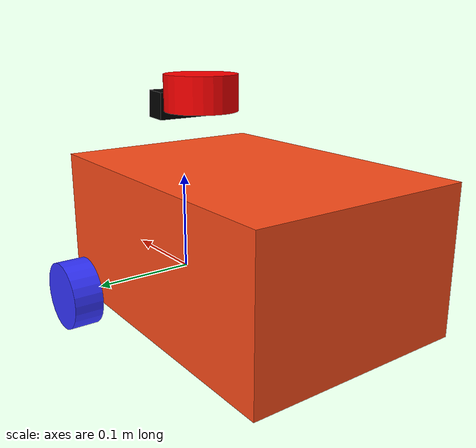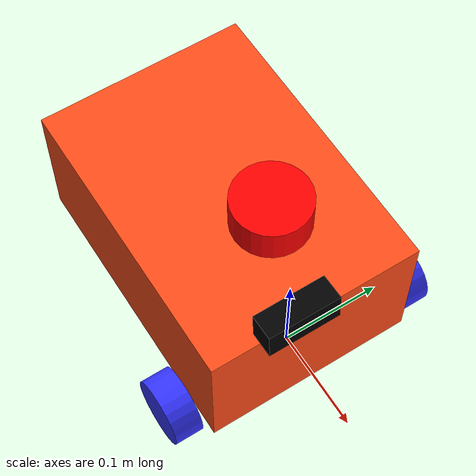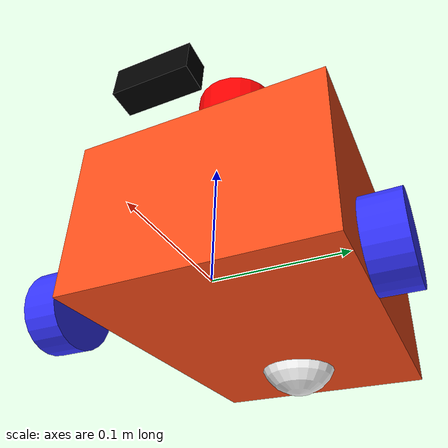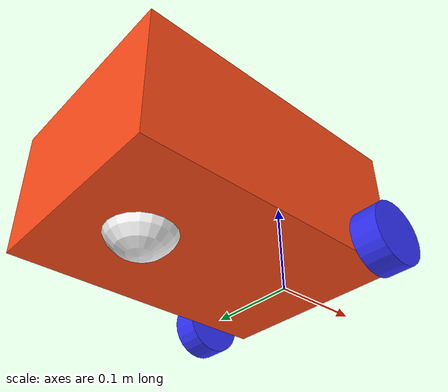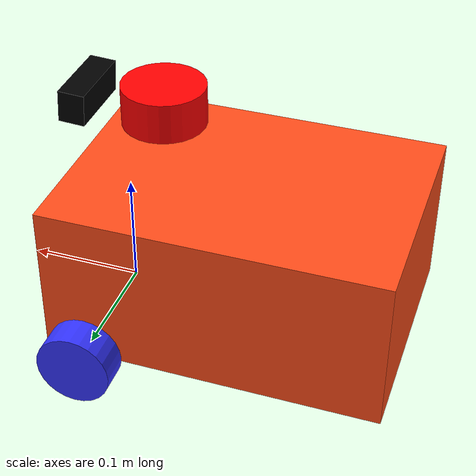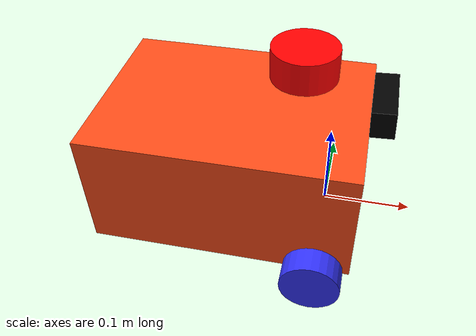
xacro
<?xml version="1.0"?>
<robot xmlns:xacro="http://www.ros.org/wiki/xacro"  name="robot">

    <xacro:arg name="use_ros2_control" default="true"/>
    <xacro:arg name="sim_mode" default="false"/>
    <xacro:arg name="use_imu" default="false"/>

    <xacro:include filename="robot_core.xacro" />
    <xacro:include filename="ros2_control.xacro" />
    <xacro:include filename="gazebo_control.xacro" />
    <xacro:include filename="lidar.xacro" />
    <xacro:include filename="camera.xacro" />
    <xacro:include filename="imu.xacro" />

</robot>

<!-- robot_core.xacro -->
<robot xmlns:xacro="http://www.ros.org/wiki/xacro" >

    <xacro:include filename="inertial_macros.xacro"/>

    <xacro:property name="chassis_length" value="0.295"/>
    <xacro:property name="chassis_width" value="0.21"/>
    <xacro:property name="chassis_height" value="0.138"/>
    <xacro:property name="chassis_mass" value="1.0"/>
    <xacro:property name="wheel_radius" value="0.0327"/>
    <xacro:property name="wheel_thickness" value="0.028"/>
    <xacro:property name="wheel_mass" value="0.05"/>
    <!-- MEASURED: axle to chassis REAR edge. chassis_length above is still an
         unverified 0.295, so the chassis FRONT edge (base_link x = +0.040) is
         derived, not measured. -->
    <xacro:property name="wheel_offset_x" value="0.255"/>
    <xacro:property name="wheel_offset_y" value="0.12584"/>
    <xacro:property name="wheel_offset_z" value="0.01"/>
    <xacro:property name="caster_wheel_radius" value="0.038"/>
    <xacro:property name="caster_wheel_mass" value="0.01"/>
    <xacro:property name="caster_wheel_offset_x" value="0.075"/>
    <xacro:property name="caster_wheel_offset_z" value="${wheel_offset_z - wheel_radius + caster_wheel_radius}"/>

    <material name="white">
        <color rgba="1 1 1 1" />
    </material>

    <material name="orange">
        <color rgba="1 0.3 0.1 1"/>
    </material>

    <material name="blue">
        <color rgba="0.2 0.2 1 1"/>
    </material>

    <material name="black">
        <color rgba="0 0 0 1"/>
    </material>

    <material name="red">
        <color rgba="1 0 0 1"/>
    </material>

    <!-- BASE LINK -->

    <link name="base_link">

    </link>

    <!-- BASE_FOOTPRINT LINK -->

    <joint name="base_footprint_joint" type="fixed">
        <parent link="base_link"/>
        <child link="base_footprint"/>
        <origin xyz="0 0 ${-wheel_radius}" rpy="0 0 0"/>
    </joint>

    <link name="base_footprint">
    </link>

    <!-- CHASSIS LINK -->

    <joint name="chassis_joint" type="fixed">
        <parent link="base_link"/>
        <child link="chassis"/>
        <origin xyz="${-wheel_offset_x} 0 ${-wheel_offset_z}"/>
    </joint>

    <link name="chassis">
        <visual>
            <origin xyz="${chassis_length/2} 0 ${chassis_height/2}"/>
            <geometry>
                <box size="${chassis_length} ${chassis_width} ${chassis_height}"/>
            </geometry>
            <material name="orange"/>
        </visual>
        <collision>
            <origin xyz="${chassis_length/2} 0 ${chassis_height/2}"/>
            <geometry>
                <box size="${chassis_length} ${chassis_width} ${chassis_height}"/>
            </geometry>
        </collision>
        <xacro:inertial_box mass="${chassis_mass}" x="${chassis_length}" y="${chassis_width}" z="${chassis_height}">
            <origin xyz="${chassis_length/2} 0 ${chassis_height/2}" rpy="0 0 0"/>
        </xacro:inertial_box>
    </link>

    <gazebo reference="chassis">
        <material>Gazebo/Orange</material>
    </gazebo>

    <!-- LEFT WHEEL LINK -->

    <joint name="left_wheel_joint" type="continuous">
        <parent link="base_link"/>
        <child link="left_wheel"/>
        <origin xyz="0 ${wheel_offset_y} 0" rpy="-${pi/2} 0 0" />
        <axis xyz="0 0 1"/>
    </joint>

    <link name="left_wheel">
        <visual>
            <geometry>
                <cylinder radius="${wheel_radius}" length="${wheel_thickness}"/>
            </geometry>
            <material name="blue"/>
        </visual>
        <collision>
            <geometry>
                <sphere radius="${wheel_radius}"/>
            </geometry>
        </collision>
        <xacro:inertial_cylinder mass="${wheel_mass}" length="${wheel_thickness}" radius="${wheel_radius}">
            <origin xyz="0 0 0" rpy="0 0 0"/>
        </xacro:inertial_cylinder>
    </link>

    <gazebo reference="left_wheel">
        <material>Gazebo/Blue</material>
    </gazebo>

    <!-- RIGHT WHEEL LINK -->

    <joint name="right_wheel_joint" type="continuous">
        <parent link="base_link"/>
        <child link="right_wheel"/>
        <origin xyz="0 ${-wheel_offset_y} 0" rpy="${pi/2} 0 0" />
        <axis xyz="0 0 -1"/>
    </joint>

    <link name="right_wheel">
        <visual>
            <geometry>
                <cylinder radius="${wheel_radius}" length="${wheel_thickness}"/>
            </geometry>
            <material name="blue"/>
        </visual>
        <collision>
            <geometry>
                <sphere radius="${wheel_radius}"/>
            </geometry>
        </collision>
        <xacro:inertial_cylinder mass="${wheel_mass}" length="${wheel_thickness}" radius="${wheel_radius}">
            <origin xyz="0 0 0" rpy="0 0 0"/>
        </xacro:inertial_cylinder>
    </link>

    <gazebo reference="right_wheel">
        <material>Gazebo/Blue</material>
    </gazebo>

    <!-- CASTER WHEEL LINK -->

    <joint name="caster_wheel_joint" type="fixed">
        <parent link="chassis"/>
        <child link="caster_wheel"/>
        <origin xyz="${caster_wheel_offset_x} 0 ${caster_wheel_offset_z}"/>
    </joint>

    <link name="caster_wheel">
        <visual>
            <geometry>
                <sphere radius="${caster_wheel_radius}"/>
            </geometry>
            <material name="white"/>
        </visual>
        <collision>
            <geometry>
                <sphere radius="${caster_wheel_radius}"/>
            </geometry>
        </collision>
        <xacro:inertial_sphere mass="${caster_wheel_mass}" radius="${caster_wheel_radius}">
            <origin xyz="0 0 0" rpy="0 0 0"/>
        </xacro:inertial_sphere>
    </link>

    <gazebo reference="caster_wheel">
        <material>Gazebo/White</material>
        <mu1 value="0.001"/>
        <mu2 value="0.001"/>
    </gazebo>

</robot>

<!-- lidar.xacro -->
<robot xmlns:xacro="http://www.ros.org/wiki/xacro">

    <!-- Puck dimensions, approx YDLidar X3 Pro -->
    <xacro:property name="lidar_radius" value="0.036"/>
    <xacro:property name="lidar_length" value="0.035"/>
    <xacro:property name="lidar_mass" value="0.19"/>
    <xacro:property name="lidar_height_above_ground" value="0.22"/>
    <xacro:property name="lidar_offset_behind_axle" value="0.034"/>
    <xacro:property name="lidar_offset_x" value="${wheel_offset_x - lidar_offset_behind_axle}"/>
    <xacro:property name="lidar_offset_z" value="${wheel_offset_z + lidar_height_above_ground - wheel_radius}"/>

    <joint name="laser_joint" type="fixed">
        <parent link="chassis"/>
        <child link="laser_frame"/>
        <origin xyz="${lidar_offset_x} 0 ${lidar_offset_z}" rpy="0 0 0"/>
    </joint>

    <!-- Name matches config/ydlidar.yaml's frame_id so TF is identical in both
         modes. The driver stamps scans with this; nothing resolves without it. -->
    <link name="laser_frame">
        <visual>
            <geometry>
                <cylinder radius="${lidar_radius}" length="${lidar_length}"/>
            </geometry>
            <material name="red"/>
        </visual>
        <collision>
            <geometry>
                <cylinder radius="${lidar_radius}" length="${lidar_length}"/>
            </geometry>
        </collision>
        <xacro:inertial_cylinder mass="${lidar_mass}" length="${lidar_length}" radius="${lidar_radius}">
            <origin xyz="0 0 0" rpy="0 0 0"/>
        </xacro:inertial_cylinder>
    </link>

    <!-- SIMULATION ONLY. On real hardware the driver node is the publisher. -->
    <xacro:if value="$(arg sim_mode)">
        <gazebo reference="laser_frame">
            <material>Gazebo/Red</material>

            <sensor name="laser" type="gpu_lidar">
                <pose>0 0 0 0 0 0</pose>
                <topic>scan</topic>
                <update_rate>10</update_rate>
                <always_on>true</always_on>
                <visualize>true</visualize>
                <!-- Without this the header frame_id is the scoped sensor name
                     (my_bot/laser_frame/laser), which no TF frame matches. -->
                <gz_frame_id>laser_frame</gz_frame_id>
                <lidar>
                    <scan>
                        <horizontal>
                            <!-- The real unit returns 400 rays at its measured
                                 ~11.6 Hz; 300 here keeps sim cheap and the
                                 bridge downsamples both to 180 anyway. -->
                            <samples>300</samples>
                            <resolution>1</resolution>
                            <min_angle>-3.14159</min_angle>
                            <max_angle>3.14159</max_angle>
                        </horizontal>
                        <vertical>
                            <samples>1</samples>
                            <resolution>1</resolution>
                            <min_angle>0</min_angle>
                            <max_angle>0</max_angle>
                        </vertical>
                    </scan>
                    <range>
                        <min>0.12</min>
                        <max>8.0</max>
                        <resolution>0.01</resolution>
                    </range>
                </lidar>
            </sensor>
        </gazebo>
    </xacro:if>

</robot>

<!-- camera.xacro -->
<robot xmlns:xacro="http://www.ros.org/wiki/xacro">

    <xacro:property name="camera_height_above_ground" value="0.20"/>
    <xacro:property name="camera_offset_from_axle" value="0.05"/>
    <xacro:property name="camera_offset_y" value="-0.03"/>
    <xacro:property name="camera_pitch" value="${-3.0 * pi / 180.0}"/>

    <xacro:property name="camera_offset_x" value="${wheel_offset_x + camera_offset_from_axle}"/>
    <xacro:property name="camera_offset_z" value="${wheel_offset_z + camera_height_above_ground - wheel_radius}"/>

    <!-- The MOUNT frame: x forward, y left, z up, like every other body frame
         on the robot. Use this one for anything mechanical. -->
    <joint name="camera_joint" type="fixed">
        <parent link="chassis"/>
        <child link="camera_link"/>
        <origin xyz="${camera_offset_x} ${camera_offset_y} ${camera_offset_z}"
                rpy="0 ${camera_pitch} 0"/>
    </joint>

    <link name="camera_link">
        <visual>
            <geometry>
                <box size="0.024 0.068 0.029"/>
            </geometry>
            <material name="black"/>
        </visual>
        <!-- No collision and no inertial: the camera is a few tens of grams on
             a bracket, and giving it a collision box would let it clip the
             costmap footprint for no gain. -->
    </link>

    <joint name="camera_optical_joint" type="fixed">
        <parent link="camera_link"/>
        <child link="camera_optical_link"/>
        <origin xyz="0 0 0" rpy="${-pi/2} 0 ${-pi/2}"/>
    </joint>

    <link name="camera_optical_link"/>

</robot>

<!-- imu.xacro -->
<robot xmlns:xacro="http://www.ros.org/wiki/xacro">

    <xacro:property name="imu_height_above_ground" value="0.10"/>
    <xacro:property name="imu_offset_from_axle" value="0.0"/>
    <!-- Lateral offset, POSITIVE LEFT (REP-103). -->
    <xacro:property name="imu_offset_y" value="0.0"/>

    <xacro:property name="imu_offset_x" value="${wheel_offset_x + imu_offset_from_axle}"/>
    <xacro:property name="imu_offset_z" value="${wheel_offset_z + imu_height_above_ground - wheel_radius}"/>

    <joint name="imu_joint" type="fixed">
        <parent link="chassis"/>
        <child link="imu_link"/>
        <!-- rpy: raw chip axes expressed in the body frame. FROM imu_check.py
             (axes flag), verbatim, once measured. -->
        <origin xyz="${imu_offset_x} ${imu_offset_y} ${imu_offset_z}"
                rpy="0 0 0"/>
    </joint>

    <link name="imu_link">
        <visual>
            <geometry>
                <box size="0.021 0.016 0.003"/>
            </geometry>
            <material name="black"/>
        </visual>
        <!-- No collision, no inertial: a 2 g breakout on a header. -->
    </link>

</robot>
